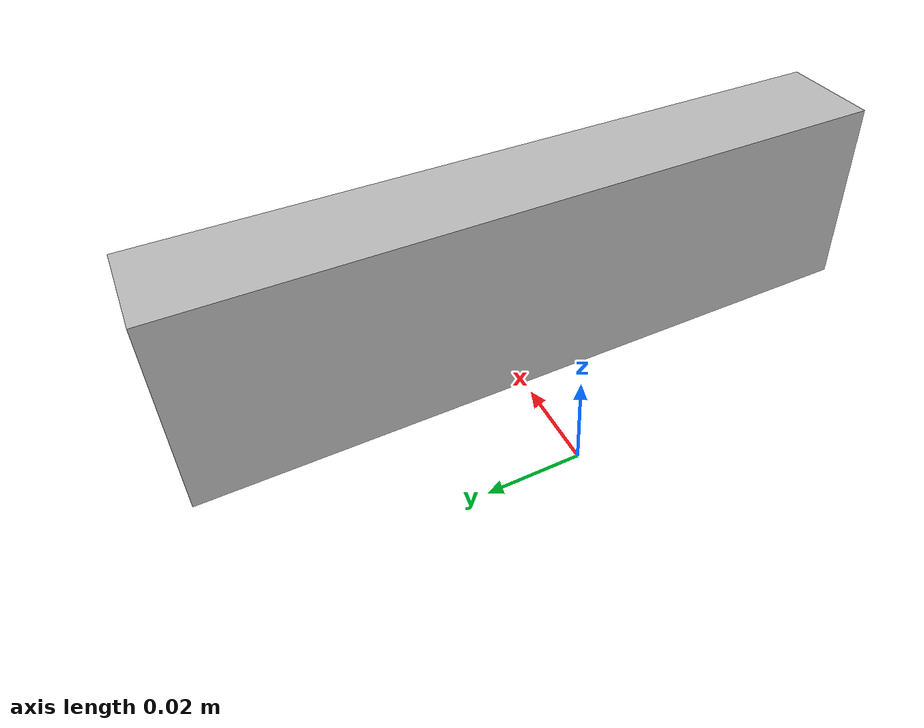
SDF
<?xml version="1.0" ?>
<sdf version="1.5">
  <model name="stereo_vins_rig">
    <pose>0 0 0.035 0 0 0</pose>
    <link name="link">
      <inertial>
        <pose>0 0 0 0 0 0</pose>
        <mass>0.02</mass>
        <inertia>
          <ixx>4.15e-6</ixx>
          <ixy>0</ixy>
          <ixz>0</ixz>
          <iyy>4.15e-6</iyy>
          <iyz>0</iyz>
          <izz>4.15e-6</izz>
        </inertia>
      </inertial>
      <visual name="visual">
        <pose>0.02 0 0 0 0 0</pose>
        <geometry>
          <box><size>0.02 0.14 0.04</size></box>
        </geometry>
      </visual>

      <sensor name="vins_left_cam" type="camera">
        <always_on>true</always_on>
        <update_rate>30</update_rate>
        <visualize>false</visualize>
        <pose>0.02 0.05 0 0 0 0</pose>
        <camera>
          <noise>
            <type>gaussian</type>
            <mean>0.0</mean>
            <stddev>0.004</stddev>
          </noise>
          <horizontal_fov>1.2</horizontal_fov>
          <image>
            <format>R8G8B8</format>
            <width>640</width>
            <height>480</height>
          </image>
          <clip>
            <near>0.05</near>
            <far>60</far>
          </clip>
        </camera>
        <plugin filename="libgazebo_ros_camera.so" name="left_cam_controller">
          <cameraName>vins_cam_left</cameraName>
          <robotNamespace></robotNamespace>
          <alwaysOn>true</alwaysOn>
          <updateRate>30</updateRate>
          <imageTopicName>image_raw</imageTopicName>
          <cameraInfoTopicName>camera_info</cameraInfoTopicName>
          <frameName>left_cam_optical</frameName>
        </plugin>
      </sensor>

      <sensor name="vins_right_cam" type="camera">
        <always_on>true</always_on>
        <update_rate>30</update_rate>
        <visualize>false</visualize>
        <pose>0.02 -0.05 0 0 0 0</pose>
        <camera>
          <noise>
            <type>gaussian</type>
            <mean>0.0</mean>
            <stddev>0.004</stddev>
          </noise>
          <horizontal_fov>1.2</horizontal_fov>
          <image>
            <format>R8G8B8</format>
            <width>640</width>
            <height>480</height>
          </image>
          <clip>
            <near>0.05</near>
            <far>60</far>
          </clip>
        </camera>
        <plugin filename="libgazebo_ros_camera.so" name="right_cam_controller">
          <cameraName>vins_cam_right</cameraName>
          <robotNamespace></robotNamespace>
          <alwaysOn>true</alwaysOn>
          <updateRate>30</updateRate>
          <imageTopicName>image_raw</imageTopicName>
          <cameraInfoTopicName>camera_info</cameraInfoTopicName>
          <frameName>right_cam_optical</frameName>
        </plugin>
      </sensor>
    </link>
  </model>
</sdf>
